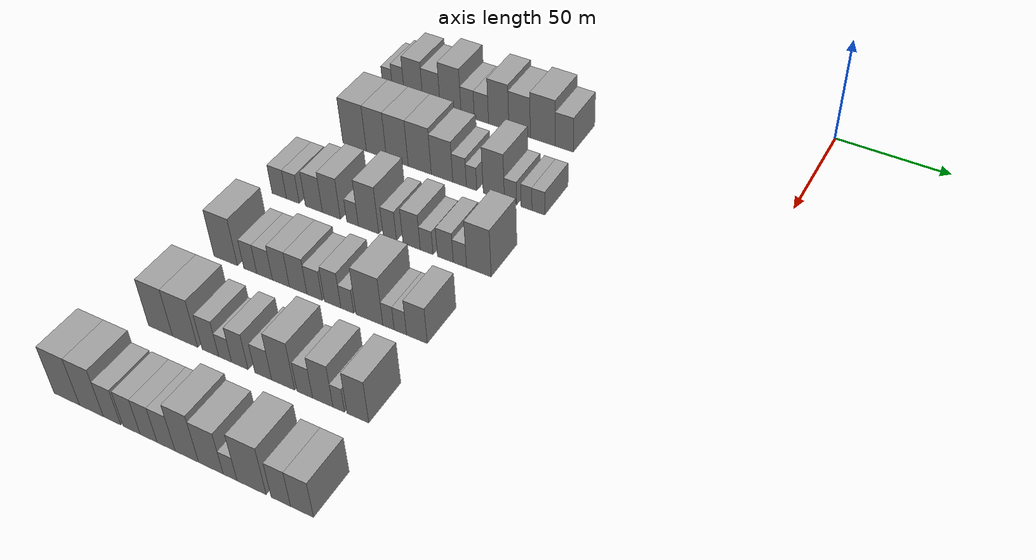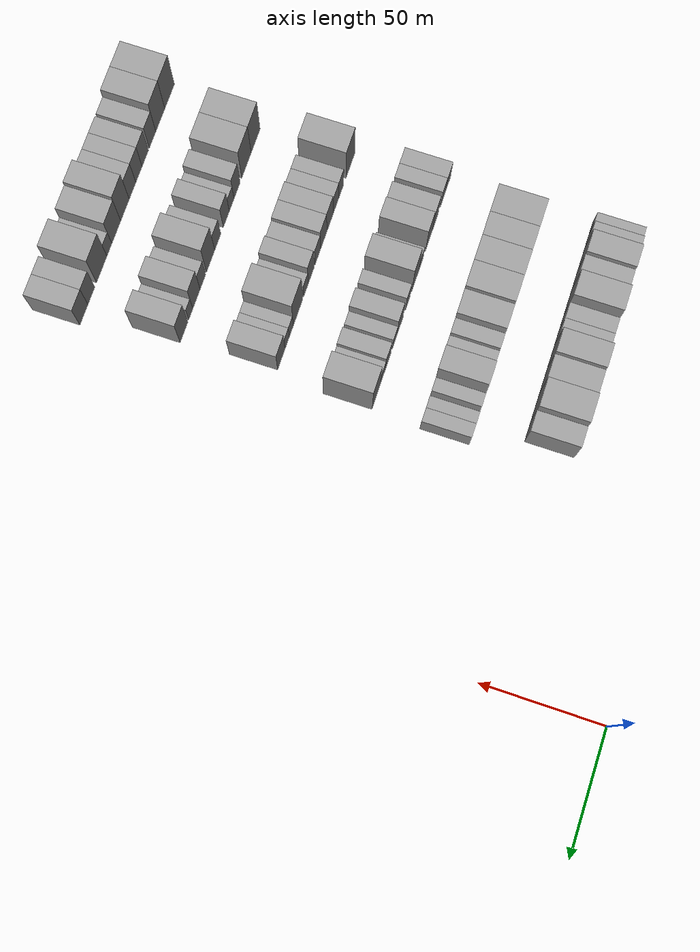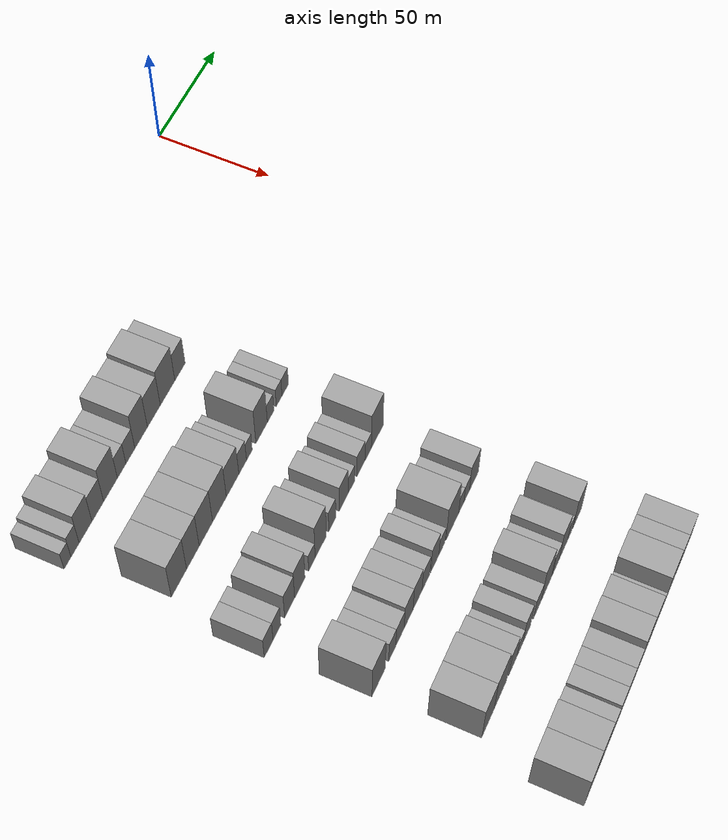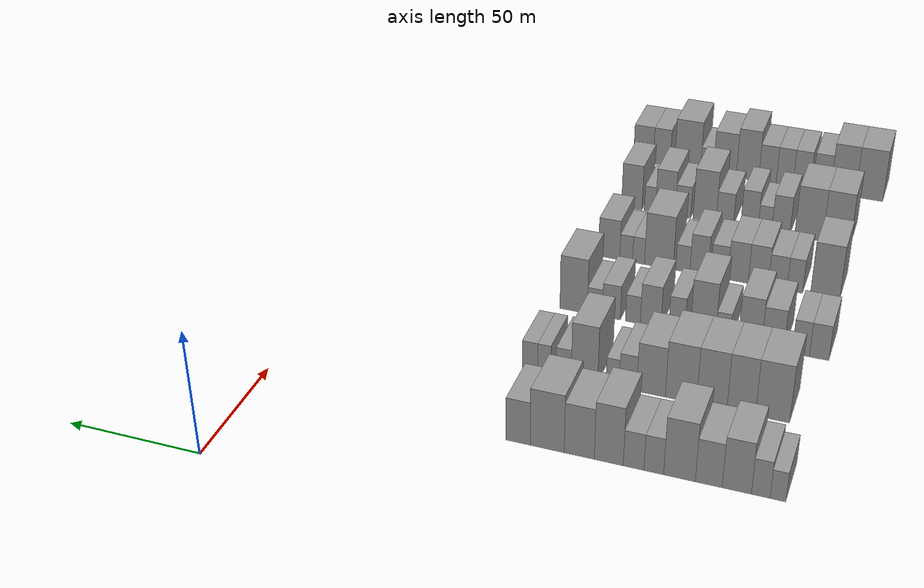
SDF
<sdf version="1.6">
 <world name="default">
  <model name="building_46">
   <static>1</static>
   <pose>50.0000 -186.2213 0 0.000000 0.000000 0.000000</pose>
   <link name="link">
    <pose>0 0 6.00 0 0 0</pose>
    <collision name="collision"><geometry><box><size>20.0000 5.1179 12.0000</size></box></geometry></collision>
    <visual name="visual">
     <cast_shadows>0</cast_shadows>
     <geometry><box><size>20.0000 5.1179 12.0000</size></box></geometry>
     <material>
      <script>
       <uri>model://grey_wall/materials/scripts</uri>
       <uri>model://grey_wall/materials/textures</uri>
       <name>vrc/grey_wall</name>
      </script>
     </material>
    </visual>
   </link>
  </model>
  <model name="building_47">
   <static>1</static>
   <pose>50.0000 -180.6284 0 0.000000 0.000000 0.000000</pose>
   <link name="link">
    <pose>0 0 7.50 0 0 0</pose>
    <collision name="collision"><geometry><box><size>20.0000 6.0679 15.0000</size></box></geometry></collision>
    <visual name="visual">
     <cast_shadows>0</cast_shadows>
     <geometry><box><size>20.0000 6.0679 15.0000</size></box></geometry>
     <material>
      <script>
       <uri>model://grey_wall/materials/scripts</uri>
       <uri>model://grey_wall/materials/textures</uri>
       <name>vrc/grey_wall</name>
      </script>
     </material>
    </visual>
   </link>
  </model>
  <model name="building_48">
   <static>1</static>
   <pose>50.0000 -172.8071 0 0.000000 0.000000 0.000000</pose>
   <link name="link">
    <pose>0 0 10.50 0 0 0</pose>
    <collision name="collision"><geometry><box><size>20.0000 9.5747 21.0000</size></box></geometry></collision>
    <visual name="visual">
     <cast_shadows>0</cast_shadows>
     <geometry><box><size>20.0000 9.5747 21.0000</size></box></geometry>
     <material>
      <script>
       <uri>model://grey_wall/materials/scripts</uri>
       <uri>model://grey_wall/materials/textures</uri>
       <name>vrc/grey_wall</name>
      </script>
     </material>
    </visual>
   </link>
  </model>
  <model name="building_49">
   <static>1</static>
   <pose>50.0000 -163.5866 0 0.000000 0.000000 0.000000</pose>
   <link name="link">
    <pose>0 0 9.00 0 0 0</pose>
    <collision name="collision"><geometry><box><size>20.0000 8.8664 18.0000</size></box></geometry></collision>
    <visual name="visual">
     <cast_shadows>0</cast_shadows>
     <geometry><box><size>20.0000 8.8664 18.0000</size></box></geometry>
     <material>
      <script>
       <uri>model://grey_wall/materials/scripts</uri>
       <uri>model://grey_wall/materials/textures</uri>
       <name>vrc/grey_wall</name>
      </script>
     </material>
    </visual>
   </link>
  </model>
  <model name="building_50">
   <static>1</static>
   <pose>50.0000 -153.8439 0 0.000000 0.000000 0.000000</pose>
   <link name="link">
    <pose>0 0 12.00 0 0 0</pose>
    <collision name="collision"><geometry><box><size>20.0000 10.6192 24.0000</size></box></geometry></collision>
    <visual name="visual">
     <cast_shadows>0</cast_shadows>
     <geometry><box><size>20.0000 10.6192 24.0000</size></box></geometry>
     <material>
      <script>
       <uri>model://grey_wall/materials/scripts</uri>
       <uri>model://grey_wall/materials/textures</uri>
       <name>vrc/grey_wall</name>
      </script>
     </material>
    </visual>
   </link>
  </model>
  <model name="building_51">
   <static>1</static>
   <pose>50.0000 -145.2161 0 0.000000 0.000000 0.000000</pose>
   <link name="link">
    <pose>0 0 7.50 0 0 0</pose>
    <collision name="collision"><geometry><box><size>20.0000 6.6364 15.0000</size></box></geometry></collision>
    <visual name="visual">
     <cast_shadows>0</cast_shadows>
     <geometry><box><size>20.0000 6.6364 15.0000</size></box></geometry>
     <material>
      <script>
       <uri>model://grey_wall/materials/scripts</uri>
       <uri>model://grey_wall/materials/textures</uri>
       <name>vrc/grey_wall</name>
      </script>
     </material>
    </visual>
   </link>
  </model>
  <model name="building_52">
   <static>1</static>
   <pose>50.0000 -138.3715 0 0.000000 0.000000 0.000000</pose>
   <link name="link">
    <pose>0 0 7.50 0 0 0</pose>
    <collision name="collision"><geometry><box><size>20.0000 7.0527 15.0000</size></box></geometry></collision>
    <visual name="visual">
     <cast_shadows>0</cast_shadows>
     <geometry><box><size>20.0000 7.0527 15.0000</size></box></geometry>
     <material>
      <script>
       <uri>model://grey_wall/materials/scripts</uri>
       <uri>model://grey_wall/materials/textures</uri>
       <name>vrc/grey_wall</name>
      </script>
     </material>
    </visual>
   </link>
  </model>
  <model name="building_53">
   <static>1</static>
   <pose>50.0000 -129.8535 0 0.000000 0.000000 0.000000</pose>
   <link name="link">
    <pose>0 0 12.00 0 0 0</pose>
    <collision name="collision"><geometry><box><size>20.0000 9.9832 24.0000</size></box></geometry></collision>
    <visual name="visual">
     <cast_shadows>0</cast_shadows>
     <geometry><box><size>20.0000 9.9832 24.0000</size></box></geometry>
     <material>
      <script>
       <uri>model://grey_wall/materials/scripts</uri>
       <uri>model://grey_wall/materials/textures</uri>
       <name>vrc/grey_wall</name>
      </script>
     </material>
    </visual>
   </link>
  </model>
  <model name="building_54">
   <static>1</static>
   <pose>50.0000 -119.6604 0 0.000000 0.000000 0.000000</pose>
   <link name="link">
    <pose>0 0 10.50 0 0 0</pose>
    <collision name="collision"><geometry><box><size>20.0000 10.4030 21.0000</size></box></geometry></collision>
    <visual name="visual">
     <cast_shadows>0</cast_shadows>
     <geometry><box><size>20.0000 10.4030 21.0000</size></box></geometry>
     <material>
      <script>
       <uri>model://grey_wall/materials/scripts</uri>
       <uri>model://grey_wall/materials/textures</uri>
       <name>vrc/grey_wall</name>
      </script>
     </material>
    </visual>
   </link>
  </model>
  <model name="building_55">
   <static>1</static>
   <pose>50.0000 -108.4930 0 0.000000 0.000000 0.000000</pose>
   <link name="link">
    <pose>0 0 12.00 0 0 0</pose>
    <collision name="collision"><geometry><box><size>20.0000 11.9318 24.0000</size></box></geometry></collision>
    <visual name="visual">
     <cast_shadows>0</cast_shadows>
     <geometry><box><size>20.0000 11.9318 24.0000</size></box></geometry>
     <material>
      <script>
       <uri>model://grey_wall/materials/scripts</uri>
       <uri>model://grey_wall/materials/textures</uri>
       <name>vrc/grey_wall</name>
      </script>
     </material>
    </visual>
   </link>
  </model>
  <model name="building_56">
   <static>1</static>
   <pose>50.0000 -98.2424 0 0.000000 0.000000 0.000000</pose>
   <link name="link">
    <pose>0 0 9.00 0 0 0</pose>
    <collision name="collision"><geometry><box><size>20.0000 8.5694 18.0000</size></box></geometry></collision>
    <visual name="visual">
     <cast_shadows>0</cast_shadows>
     <geometry><box><size>20.0000 8.5694 18.0000</size></box></geometry>
     <material>
      <script>
       <uri>model://grey_wall/materials/scripts</uri>
       <uri>model://grey_wall/materials/textures</uri>
       <name>vrc/grey_wall</name>
      </script>
     </material>
    </visual>
   </link>
  </model>
  <model name="building_189">
   <static>1</static>
   <pose>90.0000 -176.7323 0 0.000000 0.000000 0.000000</pose>
   <link name="link">
    <pose>0 0 12.00 0 0 0</pose>
    <collision name="collision"><geometry><box><size>20.0000 11.8570 24.0000</size></box></geometry></collision>
    <visual name="visual">
     <cast_shadows>0</cast_shadows>
     <geometry><box><size>20.0000 11.8570 24.0000</size></box></geometry>
     <material>
      <script>
       <uri>model://grey_wall/materials/scripts</uri>
       <uri>model://grey_wall/materials/textures</uri>
       <name>vrc/grey_wall</name>
      </script>
     </material>
    </visual>
   </link>
  </model>
  <model name="building_190">
   <static>1</static>
   <pose>90.0000 -165.8183 0 0.000000 0.000000 0.000000</pose>
   <link name="link">
    <pose>0 0 12.00 0 0 0</pose>
    <collision name="collision"><geometry><box><size>20.0000 9.9711 24.0000</size></box></geometry></collision>
    <visual name="visual">
     <cast_shadows>0</cast_shadows>
     <geometry><box><size>20.0000 9.9711 24.0000</size></box></geometry>
     <material>
      <script>
       <uri>model://grey_wall/materials/scripts</uri>
       <uri>model://grey_wall/materials/textures</uri>
       <name>vrc/grey_wall</name>
      </script>
     </material>
    </visual>
   </link>
  </model>
  <model name="building_191">
   <static>1</static>
   <pose>90.0000 -155.4725 0 0.000000 0.000000 0.000000</pose>
   <link name="link">
    <pose>0 0 12.00 0 0 0</pose>
    <collision name="collision"><geometry><box><size>20.0000 10.7203 24.0000</size></box></geometry></collision>
    <visual name="visual">
     <cast_shadows>0</cast_shadows>
     <geometry><box><size>20.0000 10.7203 24.0000</size></box></geometry>
     <material>
      <script>
       <uri>model://grey_wall/materials/scripts</uri>
       <uri>model://grey_wall/materials/textures</uri>
       <name>vrc/grey_wall</name>
      </script>
     </material>
    </visual>
   </link>
  </model>
  <model name="building_192">
   <static>1</static>
   <pose>90.0000 -144.5180 0 0.000000 0.000000 0.000000</pose>
   <link name="link">
    <pose>0 0 12.00 0 0 0</pose>
    <collision name="collision"><geometry><box><size>20.0000 11.1888 24.0000</size></box></geometry></collision>
    <visual name="visual">
     <cast_shadows>0</cast_shadows>
     <geometry><box><size>20.0000 11.1888 24.0000</size></box></geometry>
     <material>
      <script>
       <uri>model://grey_wall/materials/scripts</uri>
       <uri>model://grey_wall/materials/textures</uri>
       <name>vrc/grey_wall</name>
      </script>
     </material>
    </visual>
   </link>
  </model>
  <model name="building_193">
   <static>1</static>
   <pose>90.0000 -133.7678 0 0.000000 0.000000 0.000000</pose>
   <link name="link">
    <pose>0 0 10.50 0 0 0</pose>
    <collision name="collision"><geometry><box><size>20.0000 10.3115 21.0000</size></box></geometry></collision>
    <visual name="visual">
     <cast_shadows>0</cast_shadows>
     <geometry><box><size>20.0000 10.3115 21.0000</size></box></geometry>
     <material>
      <script>
       <uri>model://grey_wall/materials/scripts</uri>
       <uri>model://grey_wall/materials/textures</uri>
       <name>vrc/grey_wall</name>
      </script>
     </material>
    </visual>
   </link>
  </model>
  <model name="building_194">
   <static>1</static>
   <pose>90.0000 -125.4086 0 0.000000 0.000000 0.000000</pose>
   <link name="link">
    <pose>0 0 7.50 0 0 0</pose>
    <collision name="collision"><geometry><box><size>20.0000 6.4068 15.0000</size></box></geometry></collision>
    <visual name="visual">
     <cast_shadows>0</cast_shadows>
     <geometry><box><size>20.0000 6.4068 15.0000</size></box></geometry>
     <material>
      <script>
       <uri>model://grey_wall/materials/scripts</uri>
       <uri>model://grey_wall/materials/textures</uri>
       <name>vrc/grey_wall</name>
      </script>
     </material>
    </visual>
   </link>
  </model>
  <model name="building_195">
   <static>1</static>
   <pose>90.0000 -119.7571 0 0.000000 0.000000 0.000000</pose>
   <link name="link">
    <pose>0 0 6.00 0 0 0</pose>
    <collision name="collision"><geometry><box><size>20.0000 4.8961 12.0000</size></box></geometry></collision>
    <visual name="visual">
     <cast_shadows>0</cast_shadows>
     <geometry><box><size>20.0000 4.8961 12.0000</size></box></geometry>
     <material>
      <script>
       <uri>model://grey_wall/materials/scripts</uri>
       <uri>model://grey_wall/materials/textures</uri>
       <name>vrc/grey_wall</name>
      </script>
     </material>
    </visual>
   </link>
  </model>
  <model name="building_196">
   <static>1</static>
   <pose>90.0000 -109.3936 0 0.000000 0.000000 0.000000</pose>
   <link name="link">
    <pose>0 0 12.00 0 0 0</pose>
    <collision name="collision"><geometry><box><size>20.0000 9.8309 24.0000</size></box></geometry></collision>
    <visual name="visual">
     <cast_shadows>0</cast_shadows>
     <geometry><box><size>20.0000 9.8309 24.0000</size></box></geometry>
     <material>
      <script>
       <uri>model://grey_wall/materials/scripts</uri>
       <uri>model://grey_wall/materials/textures</uri>
       <name>vrc/grey_wall</name>
      </script>
     </material>
    </visual>
   </link>
  </model>
  <model name="building_197">
   <static>1</static>
   <pose>90.0000 -101.6496 0 0.000000 0.000000 0.000000</pose>
   <link name="link">
    <pose>0 0 6.00 0 0 0</pose>
    <collision name="collision"><geometry><box><size>20.0000 5.6570 12.0000</size></box></geometry></collision>
    <visual name="visual">
     <cast_shadows>0</cast_shadows>
     <geometry><box><size>20.0000 5.6570 12.0000</size></box></geometry>
     <material>
      <script>
       <uri>model://grey_wall/materials/scripts</uri>
       <uri>model://grey_wall/materials/textures</uri>
       <name>vrc/grey_wall</name>
      </script>
     </material>
    </visual>
   </link>
  </model>
  <model name="building_198">
   <static>1</static>
   <pose>90.0000 -94.3480 0 0.000000 0.000000 0.000000</pose>
   <link name="link">
    <pose>0 0 6.00 0 0 0</pose>
    <collision name="collision"><geometry><box><size>20.0000 4.9462 12.0000</size></box></geometry></collision>
    <visual name="visual">
     <cast_shadows>0</cast_shadows>
     <geometry><box><size>20.0000 4.9462 12.0000</size></box></geometry>
     <material>
      <script>
       <uri>model://grey_wall/materials/scripts</uri>
       <uri>model://grey_wall/materials/textures</uri>
       <name>vrc/grey_wall</name>
      </script>
     </material>
    </visual>
   </link>
  </model>
  <model name="building_199">
   <static>1</static>
   <pose>90.0000 -88.9680 0 0.000000 0.000000 0.000000</pose>
   <link name="link">
    <pose>0 0 6.00 0 0 0</pose>
    <collision name="collision"><geometry><box><size>20.0000 5.8138 12.0000</size></box></geometry></collision>
    <visual name="visual">
     <cast_shadows>0</cast_shadows>
     <geometry><box><size>20.0000 5.8138 12.0000</size></box></geometry>
     <material>
      <script>
       <uri>model://grey_wall/materials/scripts</uri>
       <uri>model://grey_wall/materials/textures</uri>
       <name>vrc/grey_wall</name>
      </script>
     </material>
    </visual>
   </link>
  </model>
  <model name="building_328">
   <static>1</static>
   <pose>130.0000 -186.1136 0 0.000000 0.000000 0.000000</pose>
   <link name="link">
    <pose>0 0 7.50 0 0 0</pose>
    <collision name="collision"><geometry><box><size>20.0000 7.0665 15.0000</size></box></geometry></collision>
    <visual name="visual">
     <cast_shadows>0</cast_shadows>
     <geometry><box><size>20.0000 7.0665 15.0000</size></box></geometry>
     <material>
      <script>
       <uri>model://grey_wall/materials/scripts</uri>
       <uri>model://grey_wall/materials/textures</uri>
       <name>vrc/grey_wall</name>
      </script>
     </material>
    </visual>
   </link>
  </model>
  <model name="building_329">
   <static>1</static>
   <pose>130.0000 -179.3968 0 0.000000 0.000000 0.000000</pose>
   <link name="link">
    <pose>0 0 7.50 0 0 0</pose>
    <collision name="collision"><geometry><box><size>20.0000 6.3672 15.0000</size></box></geometry></collision>
    <visual name="visual">
     <cast_shadows>0</cast_shadows>
     <geometry><box><size>20.0000 6.3672 15.0000</size></box></geometry>
     <material>
      <script>
       <uri>model://grey_wall/materials/scripts</uri>
       <uri>model://grey_wall/materials/textures</uri>
       <name>vrc/grey_wall</name>
      </script>
     </material>
    </visual>
   </link>
  </model>
  <model name="building_330">
   <static>1</static>
   <pose>130.0000 -169.0999 0 0.000000 0.000000 0.000000</pose>
   <link name="link">
    <pose>0 0 9.00 0 0 0</pose>
    <collision name="collision"><geometry><box><size>20.0000 8.2265 18.0000</size></box></geometry></collision>
    <visual name="visual">
     <cast_shadows>0</cast_shadows>
     <geometry><box><size>20.0000 8.2265 18.0000</size></box></geometry>
     <material>
      <script>
       <uri>model://grey_wall/materials/scripts</uri>
       <uri>model://grey_wall/materials/textures</uri>
       <name>vrc/grey_wall</name>
      </script>
     </material>
    </visual>
   </link>
  </model>
  <model name="building_331">
   <static>1</static>
   <pose>130.0000 -160.6512 0 0.000000 0.000000 0.000000</pose>
   <link name="link">
    <pose>0 0 10.50 0 0 0</pose>
    <collision name="collision"><geometry><box><size>20.0000 8.6709 21.0000</size></box></geometry></collision>
    <visual name="visual">
     <cast_shadows>0</cast_shadows>
     <geometry><box><size>20.0000 8.6709 21.0000</size></box></geometry>
     <material>
      <script>
       <uri>model://grey_wall/materials/scripts</uri>
       <uri>model://grey_wall/materials/textures</uri>
       <name>vrc/grey_wall</name>
      </script>
     </material>
    </visual>
   </link>
  </model>
  <model name="building_332">
   <static>1</static>
   <pose>130.0000 -150.5715 0 0.000000 0.000000 0.000000</pose>
   <link name="link">
    <pose>0 0 6.00 0 0 0</pose>
    <collision name="collision"><geometry><box><size>20.0000 5.4884 12.0000</size></box></geometry></collision>
    <visual name="visual">
     <cast_shadows>0</cast_shadows>
     <geometry><box><size>20.0000 5.4884 12.0000</size></box></geometry>
     <material>
      <script>
       <uri>model://grey_wall/materials/scripts</uri>
       <uri>model://grey_wall/materials/textures</uri>
       <name>vrc/grey_wall</name>
      </script>
     </material>
    </visual>
   </link>
  </model>
  <model name="building_333">
   <static>1</static>
   <pose>130.0000 -143.0251 0 0.000000 0.000000 0.000000</pose>
   <link name="link">
    <pose>0 0 12.00 0 0 0</pose>
    <collision name="collision"><geometry><box><size>20.0000 9.6045 24.0000</size></box></geometry></collision>
    <visual name="visual">
     <cast_shadows>0</cast_shadows>
     <geometry><box><size>20.0000 9.6045 24.0000</size></box></geometry>
     <material>
      <script>
       <uri>model://grey_wall/materials/scripts</uri>
       <uri>model://grey_wall/materials/textures</uri>
       <name>vrc/grey_wall</name>
      </script>
     </material>
    </visual>
   </link>
  </model>
  <model name="building_334">
   <static>1</static>
   <pose>130.0000 -133.1279 0 0.000000 0.000000 0.000000</pose>
   <link name="link">
    <pose>0 0 7.50 0 0 0</pose>
    <collision name="collision"><geometry><box><size>20.0000 6.1898 15.0000</size></box></geometry></collision>
    <visual name="visual">
     <cast_shadows>0</cast_shadows>
     <geometry><box><size>20.0000 6.1898 15.0000</size></box></geometry>
     <material>
      <script>
       <uri>model://grey_wall/materials/scripts</uri>
       <uri>model://grey_wall/materials/textures</uri>
       <name>vrc/grey_wall</name>
      </script>
     </material>
    </visual>
   </link>
  </model>
  <model name="building_335">
   <static>1</static>
   <pose>130.0000 -123.0904 0 0.000000 0.000000 0.000000</pose>
   <link name="link">
    <pose>0 0 9.00 0 0 0</pose>
    <collision name="collision"><geometry><box><size>20.0000 7.8852 18.0000</size></box></geometry></collision>
    <visual name="visual">
     <cast_shadows>0</cast_shadows>
     <geometry><box><size>20.0000 7.8852 18.0000</size></box></geometry>
     <material>
      <script>
       <uri>model://grey_wall/materials/scripts</uri>
       <uri>model://grey_wall/materials/textures</uri>
       <name>vrc/grey_wall</name>
      </script>
     </material>
    </visual>
   </link>
  </model>
  <model name="building_336">
   <static>1</static>
   <pose>130.0000 -116.2671 0 0.000000 0.000000 0.000000</pose>
   <link name="link">
    <pose>0 0 6.00 0 0 0</pose>
    <collision name="collision"><geometry><box><size>20.0000 5.7614 12.0000</size></box></geometry></collision>
    <visual name="visual">
     <cast_shadows>0</cast_shadows>
     <geometry><box><size>20.0000 5.7614 12.0000</size></box></geometry>
     <material>
      <script>
       <uri>model://grey_wall/materials/scripts</uri>
       <uri>model://grey_wall/materials/textures</uri>
       <name>vrc/grey_wall</name>
      </script>
     </material>
    </visual>
   </link>
  </model>
  <model name="building_337">
   <static>1</static>
   <pose>130.0000 -107.8517 0 0.000000 0.000000 0.000000</pose>
   <link name="link">
    <pose>0 0 7.50 0 0 0</pose>
    <collision name="collision"><geometry><box><size>20.0000 7.0694 15.0000</size></box></geometry></collision>
    <visual name="visual">
     <cast_shadows>0</cast_shadows>
     <geometry><box><size>20.0000 7.0694 15.0000</size></box></geometry>
     <material>
      <script>
       <uri>model://grey_wall/materials/scripts</uri>
       <uri>model://grey_wall/materials/textures</uri>
       <name>vrc/grey_wall</name>
      </script>
     </material>
    </visual>
   </link>
  </model>
  <model name="building_338">
   <static>1</static>
   <pose>130.0000 -101.3799 0 0.000000 0.000000 0.000000</pose>
   <link name="link">
    <pose>0 0 6.00 0 0 0</pose>
    <collision name="collision"><geometry><box><size>20.0000 5.8743 12.0000</size></box></geometry></collision>
    <visual name="visual">
     <cast_shadows>0</cast_shadows>
     <geometry><box><size>20.0000 5.8743 12.0000</size></box></geometry>
     <material>
      <script>
       <uri>model://grey_wall/materials/scripts</uri>
       <uri>model://grey_wall/materials/textures</uri>
       <name>vrc/grey_wall</name>
      </script>
     </material>
    </visual>
   </link>
  </model>
  <model name="building_339">
   <static>1</static>
   <pose>130.0000 -93.0318 0 0.000000 0.000000 0.000000</pose>
   <link name="link">
    <pose>0 0 12.00 0 0 0</pose>
    <collision name="collision"><geometry><box><size>20.0000 10.8219 24.0000</size></box></geometry></collision>
    <visual name="visual">
     <cast_shadows>0</cast_shadows>
     <geometry><box><size>20.0000 10.8219 24.0000</size></box></geometry>
     <material>
      <script>
       <uri>model://grey_wall/materials/scripts</uri>
       <uri>model://grey_wall/materials/textures</uri>
       <name>vrc/grey_wall</name>
      </script>
     </material>
    </visual>
   </link>
  </model>
  <model name="building_465">
   <static>1</static>
   <pose>170.0000 -181.6694 0 0.000000 0.000000 0.000000</pose>
   <link name="link">
    <pose>0 0 12.00 0 0 0</pose>
    <collision name="collision"><geometry><box><size>20.0000 11.2381 24.0000</size></box></geometry></collision>
    <visual name="visual">
     <cast_shadows>0</cast_shadows>
     <geometry><box><size>20.0000 11.2381 24.0000</size></box></geometry>
     <material>
      <script>
       <uri>model://grey_wall/materials/scripts</uri>
       <uri>model://grey_wall/materials/textures</uri>
       <name>vrc/grey_wall</name>
      </script>
     </material>
    </visual>
   </link>
  </model>
  <model name="building_466">
   <static>1</static>
   <pose>170.0000 -169.9853 0 0.000000 0.000000 0.000000</pose>
   <link name="link">
    <pose>0 0 7.50 0 0 0</pose>
    <collision name="collision"><geometry><box><size>20.0000 6.1302 15.0000</size></box></geometry></collision>
    <visual name="visual">
     <cast_shadows>0</cast_shadows>
     <geometry><box><size>20.0000 6.1302 15.0000</size></box></geometry>
     <material>
      <script>
       <uri>model://grey_wall/materials/scripts</uri>
       <uri>model://grey_wall/materials/textures</uri>
       <name>vrc/grey_wall</name>
      </script>
     </material>
    </visual>
   </link>
  </model>
  <model name="building_467">
   <static>1</static>
   <pose>170.0000 -163.2960 0 0.000000 0.000000 0.000000</pose>
   <link name="link">
    <pose>0 0 7.50 0 0 0</pose>
    <collision name="collision"><geometry><box><size>20.0000 7.2484 15.0000</size></box></geometry></collision>
    <visual name="visual">
     <cast_shadows>0</cast_shadows>
     <geometry><box><size>20.0000 7.2484 15.0000</size></box></geometry>
     <material>
      <script>
       <uri>model://grey_wall/materials/scripts</uri>
       <uri>model://grey_wall/materials/textures</uri>
       <name>vrc/grey_wall</name>
      </script>
     </material>
    </visual>
   </link>
  </model>
  <model name="building_468">
   <static>1</static>
   <pose>170.0000 -155.7333 0 0.000000 0.000000 0.000000</pose>
   <link name="link">
    <pose>0 0 9.00 0 0 0</pose>
    <collision name="collision"><geometry><box><size>20.0000 7.8770 18.0000</size></box></geometry></collision>
    <visual name="visual">
     <cast_shadows>0</cast_shadows>
     <geometry><box><size>20.0000 7.8770 18.0000</size></box></geometry>
     <material>
      <script>
       <uri>model://grey_wall/materials/scripts</uri>
       <uri>model://grey_wall/materials/textures</uri>
       <name>vrc/grey_wall</name>
      </script>
     </material>
    </visual>
   </link>
  </model>
  <model name="building_469">
   <static>1</static>
   <pose>170.0000 -147.7872 0 0.000000 0.000000 0.000000</pose>
   <link name="link">
    <pose>0 0 9.00 0 0 0</pose>
    <collision name="collision"><geometry><box><size>20.0000 8.0150 18.0000</size></box></geometry></collision>
    <visual name="visual">
     <cast_shadows>0</cast_shadows>
     <geometry><box><size>20.0000 8.0150 18.0000</size></box></geometry>
     <material>
      <script>
       <uri>model://grey_wall/materials/scripts</uri>
       <uri>model://grey_wall/materials/textures</uri>
       <name>vrc/grey_wall</name>
      </script>
     </material>
    </visual>
   </link>
  </model>
  <model name="building_470">
   <static>1</static>
   <pose>170.0000 -140.3285 0 0.000000 0.000000 0.000000</pose>
   <link name="link">
    <pose>0 0 7.50 0 0 0</pose>
    <collision name="collision"><geometry><box><size>20.0000 6.9024 15.0000</size></box></geometry></collision>
    <visual name="visual">
     <cast_shadows>0</cast_shadows>
     <geometry><box><size>20.0000 6.9024 15.0000</size></box></geometry>
     <material>
      <script>
       <uri>model://grey_wall/materials/scripts</uri>
       <uri>model://grey_wall/materials/textures</uri>
       <name>vrc/grey_wall</name>
      </script>
     </material>
    </visual>
   </link>
  </model>
  <model name="building_471">
   <static>1</static>
   <pose>170.0000 -132.2051 0 0.000000 0.000000 0.000000</pose>
   <link name="link">
    <pose>0 0 9.00 0 0 0</pose>
    <collision name="collision"><geometry><box><size>20.0000 7.3445 18.0000</size></box></geometry></collision>
    <visual name="visual">
     <cast_shadows>0</cast_shadows>
     <geometry><box><size>20.0000 7.3445 18.0000</size></box></geometry>
     <material>
      <script>
       <uri>model://grey_wall/materials/scripts</uri>
       <uri>model://grey_wall/materials/textures</uri>
       <name>vrc/grey_wall</name>
      </script>
     </material>
    </visual>
   </link>
  </model>
  <model name="building_472">
   <static>1</static>
   <pose>170.0000 -125.6757 0 0.000000 0.000000 0.000000</pose>
   <link name="link">
    <pose>0 0 6.00 0 0 0</pose>
    <collision name="collision"><geometry><box><size>20.0000 5.7143 12.0000</size></box></geometry></collision>
    <visual name="visual">
     <cast_shadows>0</cast_shadows>
     <geometry><box><size>20.0000 5.7143 12.0000</size></box></geometry>
     <material>
      <script>
       <uri>model://grey_wall/materials/scripts</uri>
       <uri>model://grey_wall/materials/textures</uri>
       <name>vrc/grey_wall</name>
      </script>
     </material>
    </visual>
   </link>
  </model>
  <model name="building_473">
   <static>1</static>
   <pose>170.0000 -115.9577 0 0.000000 0.000000 0.000000</pose>
   <link name="link">
    <pose>0 0 12.00 0 0 0</pose>
    <collision name="collision"><geometry><box><size>20.0000 11.7216 24.0000</size></box></geometry></collision>
    <visual name="visual">
     <cast_shadows>0</cast_shadows>
     <geometry><box><size>20.0000 11.7216 24.0000</size></box></geometry>
     <material>
      <script>
       <uri>model://grey_wall/materials/scripts</uri>
       <uri>model://grey_wall/materials/textures</uri>
       <name>vrc/grey_wall</name>
      </script>
     </material>
    </visual>
   </link>
  </model>
  <model name="building_474">
   <static>1</static>
   <pose>170.0000 -107.6489 0 0.000000 0.000000 0.000000</pose>
   <link name="link">
    <pose>0 0 6.00 0 0 0</pose>
    <collision name="collision"><geometry><box><size>20.0000 4.8961 12.0000</size></box></geometry></collision>
    <visual name="visual">
     <cast_shadows>0</cast_shadows>
     <geometry><box><size>20.0000 4.8961 12.0000</size></box></geometry>
     <material>
      <script>
       <uri>model://grey_wall/materials/scripts</uri>
       <uri>model://grey_wall/materials/textures</uri>
       <name>vrc/grey_wall</name>
      </script>
     </material>
    </visual>
   </link>
  </model>
  <model name="building_475">
   <static>1</static>
   <pose>170.0000 -102.5561 0 0.000000 0.000000 0.000000</pose>
   <link name="link">
    <pose>0 0 6.00 0 0 0</pose>
    <collision name="collision"><geometry><box><size>20.0000 5.2893 12.0000</size></box></geometry></collision>
    <visual name="visual">
     <cast_shadows>0</cast_shadows>
     <geometry><box><size>20.0000 5.2893 12.0000</size></box></geometry>
     <material>
      <script>
       <uri>model://grey_wall/materials/scripts</uri>
       <uri>model://grey_wall/materials/textures</uri>
       <name>vrc/grey_wall</name>
      </script>
     </material>
    </visual>
   </link>
  </model>
  <model name="building_476">
   <static>1</static>
   <pose>170.0000 -95.5056 0 0.000000 0.000000 0.000000</pose>
   <link name="link">
    <pose>0 0 9.00 0 0 0</pose>
    <collision name="collision"><geometry><box><size>20.0000 8.8117 18.0000</size></box></geometry></collision>
    <visual name="visual">
     <cast_shadows>0</cast_shadows>
     <geometry><box><size>20.0000 8.8117 18.0000</size></box></geometry>
     <material>
      <script>
       <uri>model://grey_wall/materials/scripts</uri>
       <uri>model://grey_wall/materials/textures</uri>
       <name>vrc/grey_wall</name>
      </script>
     </material>
    </visual>
   </link>
  </model>
  <model name="building_603">
   <static>1</static>
   <pose>210.0000 -179.7787 0 0.000000 0.000000 0.000000</pose>
   <link name="link">
    <pose>0 0 12.00 0 0 0</pose>
    <collision name="collision"><geometry><box><size>20.0000 11.0866 24.0000</size></box></geometry></collision>
    <visual name="visual">
     <cast_shadows>0</cast_shadows>
     <geometry><box><size>20.0000 11.0866 24.0000</size></box></geometry>
     <material>
      <script>
       <uri>model://grey_wall/materials/scripts</uri>
       <uri>model://grey_wall/materials/textures</uri>
       <name>vrc/grey_wall</name>
      </script>
     </material>
    </visual>
   </link>
  </model>
  <model name="building_604">
   <static>1</static>
   <pose>210.0000 -168.4870 0 0.000000 0.000000 0.000000</pose>
   <link name="link">
    <pose>0 0 12.00 0 0 0</pose>
    <collision name="collision"><geometry><box><size>20.0000 11.4967 24.0000</size></box></geometry></collision>
    <visual name="visual">
     <cast_shadows>0</cast_shadows>
     <geometry><box><size>20.0000 11.4967 24.0000</size></box></geometry>
     <material>
      <script>
       <uri>model://grey_wall/materials/scripts</uri>
       <uri>model://grey_wall/materials/textures</uri>
       <name>vrc/grey_wall</name>
      </script>
     </material>
    </visual>
   </link>
  </model>
  <model name="building_605">
   <static>1</static>
   <pose>210.0000 -157.0192 0 0.000000 0.000000 0.000000</pose>
   <link name="link">
    <pose>0 0 9.00 0 0 0</pose>
    <collision name="collision"><geometry><box><size>20.0000 7.4388 18.0000</size></box></geometry></collision>
    <visual name="visual">
     <cast_shadows>0</cast_shadows>
     <geometry><box><size>20.0000 7.4388 18.0000</size></box></geometry>
     <material>
      <script>
       <uri>model://grey_wall/materials/scripts</uri>
       <uri>model://grey_wall/materials/textures</uri>
       <name>vrc/grey_wall</name>
      </script>
     </material>
    </visual>
   </link>
  </model>
  <model name="building_606">
   <static>1</static>
   <pose>210.0000 -150.4429 0 0.000000 0.000000 0.000000</pose>
   <link name="link">
    <pose>0 0 6.00 0 0 0</pose>
    <collision name="collision"><geometry><box><size>20.0000 5.7138 12.0000</size></box></geometry></collision>
    <visual name="visual">
     <cast_shadows>0</cast_shadows>
     <geometry><box><size>20.0000 5.7138 12.0000</size></box></geometry>
     <material>
      <script>
       <uri>model://grey_wall/materials/scripts</uri>
       <uri>model://grey_wall/materials/textures</uri>
       <name>vrc/grey_wall</name>
      </script>
     </material>
    </visual>
   </link>
  </model>
  <model name="building_607">
   <static>1</static>
   <pose>210.0000 -143.9766 0 0.000000 0.000000 0.000000</pose>
   <link name="link">
    <pose>0 0 9.00 0 0 0</pose>
    <collision name="collision"><geometry><box><size>20.0000 7.2189 18.0000</size></box></geometry></collision>
    <visual name="visual">
     <cast_shadows>0</cast_shadows>
     <geometry><box><size>20.0000 7.2189 18.0000</size></box></geometry>
     <material>
      <script>
       <uri>model://grey_wall/materials/scripts</uri>
       <uri>model://grey_wall/materials/textures</uri>
       <name>vrc/grey_wall</name>
      </script>
     </material>
    </visual>
   </link>
  </model>
  <model name="building_608">
   <static>1</static>
   <pose>210.0000 -133.7307 0 0.000000 0.000000 0.000000</pose>
   <link name="link">
    <pose>0 0 7.50 0 0 0</pose>
    <collision name="collision"><geometry><box><size>20.0000 7.2730 15.0000</size></box></geometry></collision>
    <visual name="visual">
     <cast_shadows>0</cast_shadows>
     <geometry><box><size>20.0000 7.2730 15.0000</size></box></geometry>
     <material>
      <script>
       <uri>model://grey_wall/materials/scripts</uri>
       <uri>model://grey_wall/materials/textures</uri>
       <name>vrc/grey_wall</name>
      </script>
     </material>
    </visual>
   </link>
  </model>
  <model name="building_609">
   <static>1</static>
   <pose>210.0000 -125.1802 0 0.000000 0.000000 0.000000</pose>
   <link name="link">
    <pose>0 0 12.00 0 0 0</pose>
    <collision name="collision"><geometry><box><size>20.0000 9.8280 24.0000</size></box></geometry></collision>
    <visual name="visual">
     <cast_shadows>0</cast_shadows>
     <geometry><box><size>20.0000 9.8280 24.0000</size></box></geometry>
     <material>
      <script>
       <uri>model://grey_wall/materials/scripts</uri>
       <uri>model://grey_wall/materials/textures</uri>
       <name>vrc/grey_wall</name>
      </script>
     </material>
    </visual>
   </link>
  </model>
  <model name="building_610">
   <static>1</static>
   <pose>210.0000 -115.9820 0 0.000000 0.000000 0.000000</pose>
   <link name="link">
    <pose>0 0 7.50 0 0 0</pose>
    <collision name="collision"><geometry><box><size>20.0000 6.5684 15.0000</size></box></geometry></collision>
    <visual name="visual">
     <cast_shadows>0</cast_shadows>
     <geometry><box><size>20.0000 6.5684 15.0000</size></box></geometry>
     <material>
      <script>
       <uri>model://grey_wall/materials/scripts</uri>
       <uri>model://grey_wall/materials/textures</uri>
       <name>vrc/grey_wall</name>
      </script>
     </material>
    </visual>
   </link>
  </model>
  <model name="building_611">
   <static>1</static>
   <pose>210.0000 -108.4484 0 0.000000 0.000000 0.000000</pose>
   <link name="link">
    <pose>0 0 10.50 0 0 0</pose>
    <collision name="collision"><geometry><box><size>20.0000 8.4989 21.0000</size></box></geometry></collision>
    <visual name="visual">
     <cast_shadows>0</cast_shadows>
     <geometry><box><size>20.0000 8.4989 21.0000</size></box></geometry>
     <material>
      <script>
       <uri>model://grey_wall/materials/scripts</uri>
       <uri>model://grey_wall/materials/textures</uri>
       <name>vrc/grey_wall</name>
      </script>
     </material>
    </visual>
   </link>
  </model>
  <model name="building_612">
   <static>1</static>
   <pose>210.0000 -101.7890 0 0.000000 0.000000 0.000000</pose>
   <link name="link">
    <pose>0 0 6.00 0 0 0</pose>
    <collision name="collision"><geometry><box><size>20.0000 4.8198 12.0000</size></box></geometry></collision>
    <visual name="visual">
     <cast_shadows>0</cast_shadows>
     <geometry><box><size>20.0000 4.8198 12.0000</size></box></geometry>
     <material>
      <script>
       <uri>model://grey_wall/materials/scripts</uri>
       <uri>model://grey_wall/materials/textures</uri>
       <name>vrc/grey_wall</name>
      </script>
     </material>
    </visual>
   </link>
  </model>
  <model name="building_613">
   <static>1</static>
   <pose>210.0000 -93.9349 0 0.000000 0.000000 0.000000</pose>
   <link name="link">
    <pose>0 0 10.50 0 0 0</pose>
    <collision name="collision"><geometry><box><size>20.0000 8.8883 21.0000</size></box></geometry></collision>
    <visual name="visual">
     <cast_shadows>0</cast_shadows>
     <geometry><box><size>20.0000 8.8883 21.0000</size></box></geometry>
     <material>
      <script>
       <uri>model://grey_wall/materials/scripts</uri>
       <uri>model://grey_wall/materials/textures</uri>
       <name>vrc/grey_wall</name>
      </script>
     </material>
    </visual>
   </link>
  </model>
  <model name="building_737">
   <static>1</static>
   <pose>250.0000 -187.3099 0 0.000000 0.000000 0.000000</pose>
   <link name="link">
    <pose>0 0 12.00 0 0 0</pose>
    <collision name="collision"><geometry><box><size>20.0000 11.5636 24.0000</size></box></geometry></collision>
    <visual name="visual">
     <cast_shadows>0</cast_shadows>
     <geometry><box><size>20.0000 11.5636 24.0000</size></box></geometry>
     <material>
      <script>
       <uri>model://grey_wall/materials/scripts</uri>
       <uri>model://grey_wall/materials/textures</uri>
       <name>vrc/grey_wall</name>
      </script>
     </material>
    </visual>
   </link>
  </model>
  <model name="building_738">
   <static>1</static>
   <pose>250.0000 -176.2101 0 0.000000 0.000000 0.000000</pose>
   <link name="link">
    <pose>0 0 12.00 0 0 0</pose>
    <collision name="collision"><geometry><box><size>20.0000 10.6359 24.0000</size></box></geometry></collision>
    <visual name="visual">
     <cast_shadows>0</cast_shadows>
     <geometry><box><size>20.0000 10.6359 24.0000</size></box></geometry>
     <material>
      <script>
       <uri>model://grey_wall/materials/scripts</uri>
       <uri>model://grey_wall/materials/textures</uri>
       <name>vrc/grey_wall</name>
      </script>
     </material>
    </visual>
   </link>
  </model>
  <model name="building_739">
   <static>1</static>
   <pose>250.0000 -167.0385 0 0.000000 0.000000 0.000000</pose>
   <link name="link">
    <pose>0 0 9.00 0 0 0</pose>
    <collision name="collision"><geometry><box><size>20.0000 7.7074 18.0000</size></box></geometry></collision>
    <visual name="visual">
     <cast_shadows>0</cast_shadows>
     <geometry><box><size>20.0000 7.7074 18.0000</size></box></geometry>
     <material>
      <script>
       <uri>model://grey_wall/materials/scripts</uri>
       <uri>model://grey_wall/materials/textures</uri>
       <name>vrc/grey_wall</name>
      </script>
     </material>
    </visual>
   </link>
  </model>
  <model name="building_740">
   <static>1</static>
   <pose>250.0000 -158.4675 0 0.000000 0.000000 0.000000</pose>
   <link name="link">
    <pose>0 0 9.00 0 0 0</pose>
    <collision name="collision"><geometry><box><size>20.0000 7.4347 18.0000</size></box></geometry></collision>
    <visual name="visual">
     <cast_shadows>0</cast_shadows>
     <geometry><box><size>20.0000 7.4347 18.0000</size></box></geometry>
     <material>
      <script>
       <uri>model://grey_wall/materials/scripts</uri>
       <uri>model://grey_wall/materials/textures</uri>
       <name>vrc/grey_wall</name>
      </script>
     </material>
    </visual>
   </link>
  </model>
  <model name="building_741">
   <static>1</static>
   <pose>250.0000 -151.1089 0 0.000000 0.000000 0.000000</pose>
   <link name="link">
    <pose>0 0 9.00 0 0 0</pose>
    <collision name="collision"><geometry><box><size>20.0000 7.2824 18.0000</size></box></geometry></collision>
    <visual name="visual">
     <cast_shadows>0</cast_shadows>
     <geometry><box><size>20.0000 7.2824 18.0000</size></box></geometry>
     <material>
      <script>
       <uri>model://grey_wall/materials/scripts</uri>
       <uri>model://grey_wall/materials/textures</uri>
       <name>vrc/grey_wall</name>
      </script>
     </material>
    </visual>
   </link>
  </model>
  <model name="building_742">
   <static>1</static>
   <pose>250.0000 -143.6318 0 0.000000 0.000000 0.000000</pose>
   <link name="link">
    <pose>0 0 9.00 0 0 0</pose>
    <collision name="collision"><geometry><box><size>20.0000 7.6718 18.0000</size></box></geometry></collision>
    <visual name="visual">
     <cast_shadows>0</cast_shadows>
     <geometry><box><size>20.0000 7.6718 18.0000</size></box></geometry>
     <material>
      <script>
       <uri>model://grey_wall/materials/scripts</uri>
       <uri>model://grey_wall/materials/textures</uri>
       <name>vrc/grey_wall</name>
      </script>
     </material>
    </visual>
   </link>
  </model>
  <model name="building_743">
   <static>1</static>
   <pose>250.0000 -134.8790 0 0.000000 0.000000 0.000000</pose>
   <link name="link">
    <pose>0 0 12.00 0 0 0</pose>
    <collision name="collision"><geometry><box><size>20.0000 9.8337 24.0000</size></box></geometry></collision>
    <visual name="visual">
     <cast_shadows>0</cast_shadows>
     <geometry><box><size>20.0000 9.8337 24.0000</size></box></geometry>
     <material>
      <script>
       <uri>model://grey_wall/materials/scripts</uri>
       <uri>model://grey_wall/materials/textures</uri>
       <name>vrc/grey_wall</name>
      </script>
     </material>
    </visual>
   </link>
  </model>
  <model name="building_744">
   <static>1</static>
   <pose>250.0000 -124.8759 0 0.000000 0.000000 0.000000</pose>
   <link name="link">
    <pose>0 0 10.50 0 0 0</pose>
    <collision name="collision"><geometry><box><size>20.0000 10.1726 21.0000</size></box></geometry></collision>
    <visual name="visual">
     <cast_shadows>0</cast_shadows>
     <geometry><box><size>20.0000 10.1726 21.0000</size></box></geometry>
     <material>
      <script>
       <uri>model://grey_wall/materials/scripts</uri>
       <uri>model://grey_wall/materials/textures</uri>
       <name>vrc/grey_wall</name>
      </script>
     </material>
    </visual>
   </link>
  </model>
  <model name="building_745">
   <static>1</static>
   <pose>250.0000 -116.9622 0 0.000000 0.000000 0.000000</pose>
   <link name="link">
    <pose>0 0 6.00 0 0 0</pose>
    <collision name="collision"><geometry><box><size>20.0000 5.6547 12.0000</size></box></geometry></collision>
    <visual name="visual">
     <cast_shadows>0</cast_shadows>
     <geometry><box><size>20.0000 5.6547 12.0000</size></box></geometry>
     <material>
      <script>
       <uri>model://grey_wall/materials/scripts</uri>
       <uri>model://grey_wall/materials/textures</uri>
       <name>vrc/grey_wall</name>
      </script>
     </material>
    </visual>
   </link>
  </model>
  <model name="building_746">
   <static>1</static>
   <pose>250.0000 -108.2751 0 0.000000 0.000000 0.000000</pose>
   <link name="link">
    <pose>0 0 12.00 0 0 0</pose>
    <collision name="collision"><geometry><box><size>20.0000 11.7196 24.0000</size></box></geometry></collision>
    <visual name="visual">
     <cast_shadows>0</cast_shadows>
     <geometry><box><size>20.0000 11.7196 24.0000</size></box></geometry>
     <material>
      <script>
       <uri>model://grey_wall/materials/scripts</uri>
       <uri>model://grey_wall/materials/textures</uri>
       <name>vrc/grey_wall</name>
      </script>
     </material>
    </visual>
   </link>
  </model>
  <model name="building_747">
   <static>1</static>
   <pose>250.0000 -96.5942 0 0.000000 0.000000 0.000000</pose>
   <link name="link">
    <pose>0 0 9.00 0 0 0</pose>
    <collision name="collision"><geometry><box><size>20.0000 7.6421 18.0000</size></box></geometry></collision>
    <visual name="visual">
     <cast_shadows>0</cast_shadows>
     <geometry><box><size>20.0000 7.6421 18.0000</size></box></geometry>
     <material>
      <script>
       <uri>model://grey_wall/materials/scripts</uri>
       <uri>model://grey_wall/materials/textures</uri>
       <name>vrc/grey_wall</name>
      </script>
     </material>
    </visual>
   </link>
  </model>
  <model name="building_748">
   <static>1</static>
   <pose>250.0000 -88.2963 0 0.000000 0.000000 0.000000</pose>
   <link name="link">
    <pose>0 0 9.00 0 0 0</pose>
    <collision name="collision"><geometry><box><size>20.0000 8.9537 18.0000</size></box></geometry></collision>
    <visual name="visual">
     <cast_shadows>0</cast_shadows>
     <geometry><box><size>20.0000 8.9537 18.0000</size></box></geometry>
     <material>
      <script>
       <uri>model://grey_wall/materials/scripts</uri>
       <uri>model://grey_wall/materials/textures</uri>
       <name>vrc/grey_wall</name>
      </script>
     </material>
    </visual>
   </link>
  </model>
 </world>
</sdf>
